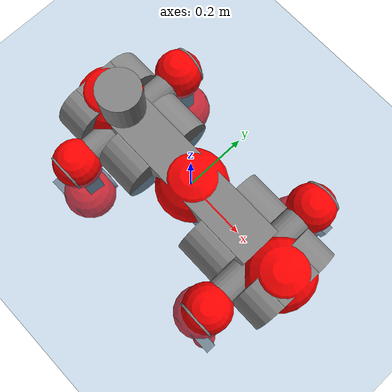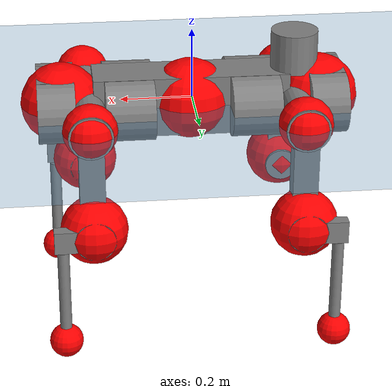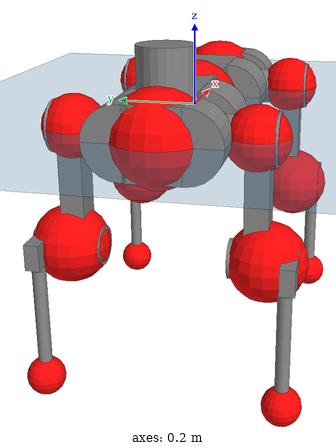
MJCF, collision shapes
<mujoco model="anymal_c">
  <compiler angle="radian" assetdir="assets" balanceinertia="true" inertiafromgeom="false"/>

  <option timestep="0.005" density="1.2" viscosity="2e-05"/>

  <size nkey="1"/>

  <visual>
    <quality shadowsize="8192"/>
    <map shadowclip="0.5"/>
  </visual>

  <default>
    <default class="/">
      <material specular="0" shininess="0.25"/>
      <geom contype="0" conaffinity="0" group="1" solref="-1000 -80"/>
      <site size="0.01 0.005 0.005" group="5"/>
      <general forcelimited="true" forcerange="-80 80" biastype="affine" gainprm="80" biasprm="0 -80 -2"/>
      <default class="anymal_c">
        <joint armature="0.01" damping="0.01" frictionloss="0.1"/>
        <default class="visual">
          <geom type="mesh" group="2"/>
          <default class="visual_zflip"/>
        </default>
        <default class="collision">
          <geom type="cylinder" group="3"/>
          <default class="foot">
            <geom size="0.03 0 0" type="sphere" condim="6" priority="1" friction="0.8 0.02 0.01" solimp="0.015 1 0.03"/>
          </default>
        </default>
      </default>
      <default class="reward_collision_sphere">
        <geom group="5" rgba="1 0 0 1"/>
      </default>
    </default>
  </default>

  <asset>
    <texture type="skybox" colorspace="auto" name="//unnamed_texture_0" builtin="gradient" rgb1="0.95 0.95 0.95" rgb2="0.95 0.95 0.95" width="100" height="600"/>
    <texture type="2d" colorspace="auto" name="texplane" builtin="checker" rgb1="0.345 0.575 0.748" rgb2="0.345 0.575 0.748" markrgb="1 1 1" width="512" height="512"/>
    <texture type="2d" colorspace="linear" name="base" file="base.png"/>
    <texture type="2d" colorspace="linear" name="top_shell" file="top_shell.png"/>
    <texture type="2d" colorspace="linear" name="bottom_shell" file="bottom_shell.png"/>
    <texture type="2d" colorspace="linear" name="remote" file="remote.png"/>
    <texture type="2d" colorspace="linear" name="hatch" file="hatch.png"/>
    <texture type="2d" colorspace="linear" name="handle" file="handle.png"/>
    <texture type="2d" colorspace="linear" name="face" file="face.png"/>
    <texture type="2d" colorspace="linear" name="battery" file="battery.png"/>
    <texture type="2d" colorspace="linear" name="lidar_cage" file="lidar_cage.png"/>
    <texture type="2d" colorspace="linear" name="depth_camera" file="depth_camera.png"/>
    <texture type="2d" colorspace="linear" name="wide_angle_camera" file="wide_angle_camera.png"/>
    <texture type="2d" colorspace="linear" name="lidar" file="lidar.png"/>
    <texture type="2d" colorspace="linear" name="drive" file="drive.png"/>
    <texture type="2d" colorspace="linear" name="hip_l" file="hip_l.png"/>
    <texture type="2d" colorspace="linear" name="shank_l" file="shank_l.png"/>
    <texture type="2d" colorspace="linear" name="foot" file="foot.png"/>
    <texture type="2d" colorspace="linear" name="thigh" file="thigh.png"/>
    <texture type="2d" colorspace="linear" name="shank_r" file="shank_r.png"/>
    <texture type="2d" colorspace="linear" name="hip_r" file="hip_r.png"/>
    <material name="MatPlane" class="/" texture="texplane" texuniform="true" texrepeat="2 2" specular="0.9" shininess="0.5"/>
    <material name="black_plastic" class="/" rgba="0.007 0.007 0.007 1"/>
    <material name="green" class="/" rgba="0.052 0.178 0.033 1"/>
    <material name="red" class="/" rgba="0.178 0.006 0.005 1"/>
    <material name="yellow" class="/" rgba="0.178 0.119 0.006 1"/>
    <material name="lwl" class="/" rgba="0.8 0.8 0.8 1"/>
    <material name="base" class="/" texture="base"/>
    <material name="top_shell" class="/" texture="top_shell"/>
    <material name="bottom_shell" class="/" texture="bottom_shell"/>
    <material name="hip_l" class="/" texture="hip_l"/>
    <material name="thigh" class="/" texture="thigh"/>
    <material name="shank_l" class="/" texture="shank_l"/>
    <material name="foot" class="/" texture="foot"/>
    <material name="hip_r" class="/" texture="hip_r"/>
    <material name="shank" class="/" texture="shank_r"/>
    <material name="hatch" class="/" texture="hatch"/>
    <material name="remote" class="/" texture="remote"/>
    <material name="handle" class="/" texture="handle"/>
    <material name="face" class="/" texture="face"/>
    <material name="depth_camera" class="/" texture="depth_camera"/>
    <material name="wide_angle_camera" class="/" texture="wide_angle_camera"/>
    <material name="battery" class="/" texture="battery"/>
    <material name="lidar_cage" class="/" texture="lidar_cage"/>
    <material name="lidar" class="/" texture="lidar"/>
    <material name="drive" class="/" texture="drive"/>
    <mesh name="base_0" class="/" file="base_0.obj"/>
    <mesh name="base_1" class="/" file="base_1.obj"/>
    <mesh name="base_2" class="/" file="base_2.obj"/>
    <mesh name="base_3" class="/" file="base_3.obj"/>
    <mesh name="base_4" class="/" file="base_4.obj"/>
    <mesh name="base_5" class="/" file="base_5.obj"/>
    <mesh name="top_shell" class="/" file="top_shell.obj"/>
    <mesh name="bottom_shell" class="/" file="bottom_shell.obj"/>
    <mesh name="remote" class="/" file="remote.obj"/>
    <mesh name="handle" class="/" file="handle.obj"/>
    <mesh name="face" class="/" file="face.obj"/>
    <mesh name="wide_angle_camera" class="/" file="wide_angle_camera.obj"/>
    <mesh name="depth_camera" class="/" file="depth_camera.obj"/>
    <mesh name="battery" class="/" file="battery.obj"/>
    <mesh name="lidar_cage" class="/" file="lidar_cage.obj"/>
    <mesh name="lidar" class="/" file="lidar.obj"/>
    <mesh name="drive" class="/" file="drive.obj"/>
    <mesh name="hip_l" class="/" file="hip_l.obj"/>
    <mesh name="thigh" class="/" file="thigh.obj"/>
    <mesh name="shank_l" class="/" file="shank_l.obj"/>
    <mesh name="foot" class="/" file="foot.obj"/>
    <mesh name="hip_r" class="/" file="hip_r.obj"/>
    <mesh name="hatch" class="/" file="hatch.obj"/>
    <mesh name="shank_r" class="/" file="shank_r.obj"/>
  </asset>

  <worldbody>
    <geom name="floor" class="/" size="100 100 0.125" type="plane" group="0" material="MatPlane"/>
    <light name="toplight_shadow" class="/" pos="0 0 5" dir="0.0990148 0.0990148 -0.990148" type="directional" ambient="0.04 0.04 0.04" diffuse="0.55 0.55 0.55" specular="0.12 0.12 0.12"/>
    <light name="toplight_fill" class="/" pos="0 0 5" dir="0.0990148 0.0990148 -0.990148" type="directional" castshadow="false" ambient="0.04 0.04 0.04" diffuse="0.3 0.3 0.3" specular="0.08 0.08 0.08"/>
    <body name="trunk" childclass="anymal_c" pos="0.00555156 0.00172278 -0.00130396" quat="0.999999 -0.00133373 -0.000788738 -0.000136139">
      <inertial pos="0.00820983 -0.00259331 0.0467247" quat="0.502524 0.494166 0.500918 0.502346" mass="15.968" diaginertia="0.199884 0.663395 0.208664"/>
      <joint name="//unnamed_joint_0" type="free" armature="0" damping="0" frictionloss="0"/>
      <geom name="//unnamed_geom_1" class="visual" material="green" mesh="base_0"/>
      <geom name="//unnamed_geom_2" class="visual" material="yellow" mesh="base_1"/>
      <geom name="//unnamed_geom_3" class="visual" material="red" mesh="base_2"/>
      <geom name="//unnamed_geom_4" class="visual" material="black_plastic" mesh="base_3"/>
      <geom name="//unnamed_geom_5" class="visual" material="lwl" mesh="base_4"/>
      <geom name="//unnamed_geom_6" class="visual" material="base" mesh="base_5"/>
      <geom name="trunk_1" class="collision" size="0.272205 0.0657047 0.0844774" type="box"/>
      <geom name="trunk_2" class="collision" size="0.0844774 0.0680512" pos="0.173808 0.0707877 0" quat="0.707107 0 0.707107 0"/>
      <geom name="trunk_3" class="collision" size="0.0844774 0.0680512" pos="-0.173808 0.0707877 0" quat="0.707107 0 0.707107 0"/>
      <geom name="trunk_4" class="collision" size="0.0844774 0.0680512" pos="0.173808 -0.0707877 0" quat="0.707107 0 0.707107 0"/>
      <geom name="trunk_5" class="collision" size="0.0844774 0.0680512" pos="-0.173808 -0.0707877 0" quat="0.707107 0 0.707107 0"/>
      <geom name="//unnamed_geom_12" class="visual" material="top_shell" mesh="top_shell"/>
      <geom name="//unnamed_geom_13" class="visual" material="bottom_shell" mesh="bottom_shell"/>
      <geom name="//unnamed_geom_14" class="visual" material="remote" mesh="remote"/>
      <geom name="//unnamed_geom_15" class="visual" material="handle" mesh="handle"/>
      <geom name="//unnamed_geom_16" class="visual" pos="0.331235 0 0" quat="1 0 0 0" material="face" mesh="face"/>
      <geom name="trunk_6" class="collision" size="0.0516251 0.0657047 0.0844774" pos="0.375186 0 0" type="box"/>
      <geom name="//unnamed_geom_18" class="collision" size="0.0844774 0.0516251" pos="0.375186 0.0707877 0" quat="0.707107 0 0.707107 0"/>
      <geom name="//unnamed_geom_19" class="collision" size="0.0844774 0.0516251" pos="0.375186 -0.0707877 0" quat="0.707107 0 0.707107 0"/>
      <geom name="//unnamed_geom_20" class="visual" pos="0.368922 0 -0.0309306" quat="0.965926 0 0.258819 0" material="depth_camera" mesh="depth_camera"/>
      <geom name="//unnamed_geom_21" class="visual" pos="0.409948 0 0.015053" material="wide_angle_camera" mesh="wide_angle_camera"/>
      <geom name="//unnamed_geom_22" class="visual_zflip" pos="-0.331235 0 0" quat="0 0 0 1" material="face" mesh="face"/>
      <geom name="trunk_7" class="collision" size="0.0516251 0.0657047 0.0844774" pos="-0.375186 0 0" quat="0 0 0 1" type="box"/>
      <geom name="//unnamed_geom_24" class="collision" size="0.0844774 0.0516251" pos="-0.375186 -0.0707877 0" quat="0 -0.707107 0 0.707107"/>
      <geom name="//unnamed_geom_25" class="collision" size="0.0844774 0.0516251" pos="-0.375186 0.0707877 0" quat="0 -0.707107 0 0.707107"/>
      <geom name="//unnamed_geom_26" class="visual" pos="-0.368922 0 -0.0309306" quat="0 -0.258819 0 0.965926" material="depth_camera" mesh="depth_camera"/>
      <geom name="//unnamed_geom_27" class="visual_zflip" pos="-0.409948 0 0.015053" quat="0 0 0 1" material="wide_angle_camera" mesh="wide_angle_camera"/>
      <geom name="//unnamed_geom_28" class="visual" material="battery" mesh="battery"/>
      <geom name="//unnamed_geom_29" class="visual" pos="0 0.0801126 0.0276422" quat="0.683013 -0.183013 0.183013 0.683013" material="depth_camera" mesh="depth_camera"/>
      <geom name="//unnamed_geom_30" class="visual" pos="0 -0.0801126 0.0276422" quat="0.683013 0.183013 0.183013 -0.683013" material="depth_camera" mesh="depth_camera"/>
      <geom name="//unnamed_geom_31" class="visual" pos="-0.290879 0 0.0739073" quat="1 0 0 0" material="lidar_cage" mesh="lidar_cage"/>
      <geom name="trunk_8" class="collision" size="0.0657047 0.0563183" pos="-0.290879 0 0.13424"/>
      <geom name="//unnamed_geom_33" class="visual" pos="-0.290879 8.33417e-05 0.142988" quat="0.707107 0 0 -0.707107" material="lidar" mesh="lidar"/>
      <geom name="//unnamed_geom_34" class="visual" pos="0.239656 0.105168 9.85166e-11" quat="0.258819 0.965926 0 0" material="drive" mesh="drive"/>
      <geom name="//unnamed_geom_35" class="visual" pos="0.239656 -0.105168 -9.85166e-11" quat="0.258819 -0.965926 0 0" material="drive" mesh="drive"/>
      <geom name="//unnamed_geom_36" class="visual" pos="-0.239656 0.105168 -9.85166e-11" quat="0 0 0.965926 -0.258819" material="drive" mesh="drive"/>
      <geom name="//unnamed_geom_37" class="visual" pos="-0.239656 -0.105168 9.85166e-11" quat="0 0 -0.965926 -0.258819" material="drive" mesh="drive"/>
      <geom name="//unnamed_geom_38" class="visual" pos="0.0926978 0 0.0734046" quat="1 0 0 0" material="hatch" mesh="hatch"/>
      <geom name="//unnamed_geom_39" class="reward_collision_sphere" size="0.112637"/>
      <geom name="//unnamed_geom_40" class="reward_collision_sphere" size="0.112637" pos="0.359604 0 0"/>
      <geom name="//unnamed_geom_41" class="reward_collision_sphere" size="0.112637" pos="-0.359604 0 0"/>
      <site name="imu" pos="0.201914 0.0160558 0.0359999" size="0.00938638"/>
      <camera name="track" pos="0 -2.02251 0" quat="0.707107 0.707107 0 0" mode="trackcom"/>
      <camera name="ego_camera" pos="0.359604 0 -0.0402217" quat="-0.5 -0.5 0.5 0.5"/>
      <body name="LF_HIP" pos="0.24055 0.106162 0.00151235" quat="0.259984 0.965609 0.00155717 -0.00202686">
        <inertial pos="0.0517139 -0.0154371 -0.00824796" quat="-0.127843 0.708084 -0.129724 0.682235" mass="2.12352" diaginertia="0.00176021 0.00524729 0.00320988"/>
        <joint name="LF_HAA" pos="0 0 0" axis="0.999878 -0.0131414 0.00838783" range="-0.748671 0.567361" armature="0.00820151" damping="0.0121642" frictionloss="0.0987619"/>
        <geom name="//unnamed_geom_42" class="visual" pos="0 5.79528e-06 -9.51871e-07" quat="0.258819 -0.965926 0 0" material="hip_l" mesh="hip_l"/>
        <geom name="//unnamed_geom_43" class="visual" pos="0.0478672 -0.0607924 -0.0350562" quat="0.183013 -0.683013 0.683013 0.183013" material="drive" mesh="drive"/>
        <geom name="//unnamed_geom_44" class="collision" size="0.0469319 0.0657047" pos="0.0478672 -0.0120944 -0.00694327" quat="-0.353553 -0.612372 0.612372 -0.353553"/>
        <body name="LF_THIGH" pos="0.0489552 -0.0705205 -0.0422633" quat="0.182924 -0.682762 0.683189 0.183379">
          <inertial pos="0.0191446 0.00111037 -0.251418" quat="0.993799 -0.00677547 -0.0804109 0.0764963" mass="2.45106" diaginertia="0.00955615 0.0322199 0.00419775"/>
          <joint name="LF_HFE" pos="0 0 0" axis="0.999998 -0.000374145 0.00217731" range="-3.07733 3.08885" armature="0.00815887" damping="0.0341869" frictionloss="0.0956719"/>
          <geom name="//unnamed_geom_45" class="visual" pos="-0.00422063 -6.65073e-06 0" quat="0.707107 0 0 -0.707107" material="thigh" mesh="thigh"/>
          <geom name="//unnamed_geom_46" class="collision" size="0.0610115 0.0375455" pos="0.0319648 0 0" quat="0.5 0.5 -0.5 -0.5"/>
          <geom name="//unnamed_geom_47" class="collision" size="0.0351989 0.0281591 0.132643" pos="0.0239736 0 -0.142097" quat="0.707107 0 0 -0.707107" type="box"/>
          <geom name="//unnamed_geom_48" class="visual" pos="0.0801516 0 -0.286579" quat="1 0 0 0" material="drive" mesh="drive"/>
          <geom name="//unnamed_geom_49" class="collision" size="0.0469319 0.0657047" pos="0.0242133 0 -0.286579" quat="0.707107 0 0.707107 0"/>
          <geom name="//unnamed_geom_50" class="reward_collision_sphere" size="0.075091" pos="0.019978 0 0"/>
          <body name="LF_SHANK" pos="0.0796405 0.00186844 -0.285632" quat="1 -0.000531409 -0.000139229 0.000215283">
            <inertial pos="0.00383473 -0.0618346 -0.0788015" quat="0.991896 -0.126683 0.0044451 -0.00864907" mass="0.501089" diaginertia="0.00325066 0.00984168 0.00117398"/>
            <joint name="LF_KFE" pos="0 0 0" axis="0.999919 0.0126229 -0.00185689" range="-3.17586 3.21048" armature="0.0094423" damping="0.0105162" frictionloss="0.0832617"/>
            <geom name="//unnamed_geom_51" class="visual" pos="-0.00137626 -0.00733827 0" quat="0.707107 0 0 -0.707107" material="shank_l" mesh="shank_l"/>
            <geom name="LF_kfe_act" class="collision" size="0.0563183 0.0187728" pos="0.0159824 0 0" quat="0.5 0.5 -0.5 -0.5"/>
            <geom name="//unnamed_geom_53" class="collision" size="0.0539707 0.031679 0.0178341" pos="0.0159824 -0.058146 0" quat="0.5 0.5 -0.5 -0.5" type="box"/>
            <geom name="//unnamed_geom_54" class="visual" pos="0.0104288 -0.0913045 -0.339843" quat="0.382683 0 0 -0.92388" material="foot" mesh="foot"/>
            <geom name="LF_calf" class="collision" size="0.0164262 0.132584" pos="0.0104285 -0.0889397 -0.169921" quat="0.707107 0 0 -0.707107"/>
            <geom name="LF_foot" class="foot" size="0.0322254" pos="0.0104285 -0.0889397 -0.317218" quat="0.707107 0 0 -0.707107"/>
            <geom name="//unnamed_geom_57" class="reward_collision_sphere" size="0.0938638" pos="-0.0399559 0 0"/>
            <geom name="//unnamed_geom_58" class="reward_collision_sphere" size="0.0469319" pos="0.0104285 -0.0889397 -0.317218"/>
            <site name="LF_foot" class="foot" pos="0.0104285 -0.0889397 -0.317218" quat="0.707107 0 0 -0.707107" size="0.00938638"/>
          </body>
        </body>
      </body>
      <body name="RF_HIP" pos="0.239659 -0.109049 -0.00107199" quat="0.2587 -0.965958 0.000163706 -0.000212366">
        <inertial pos="0.0425021 0.0179663 -0.00838001" quat="0.129934 0.679127 0.129868 0.71066" mass="2.04085" diaginertia="0.00181576 0.00494765 0.00335282"/>
        <joint name="RF_HAA" pos="0 0 0" axis="0.999999 0.00103488 -0.000738443" range="-0.497055 0.726557" armature="0.0121043" damping="0.0100069" frictionloss="0.0669198"/>
        <geom name="//unnamed_geom_59" class="visual" pos="0 -5.79524e-06 -9.51868e-07" quat="0.258819 0.965926 0 0" material="hip_r" mesh="hip_r"/>
        <geom name="//unnamed_geom_60" class="visual" pos="0.0478672 0.0607924 -0.0350562" quat="0.183013 0.683013 0.683013 -0.183013" material="drive" mesh="drive"/>
        <geom name="//unnamed_geom_61" class="collision" size="0.0469319 0.0657047" pos="0.0478672 0.0120944 -0.00694327" quat="-0.353553 0.612372 0.612372 0.353553"/>
        <body name="RF_THIGH" pos="0.0509299 0.0719024 -0.04641" quat="0.184255 0.681541 0.683718 -0.18461">
          <inertial pos="0.0266251 0.00624251 -0.249101" quat="0.993813 -0.00449587 -0.0793564 0.0775708" mass="2.69488" diaginertia="0.00962097 0.0306513 0.00437825"/>
          <joint name="RF_HFE" pos="0 0 0" axis="0.999878 -0.00345551 -0.0152306" stiffness="0.0089841" range="-3.18218 3.11226" armature="0.00916502" damping="0.00967375" frictionloss="0.0985791"/>
          <geom name="//unnamed_geom_62" class="visual" pos="-0.00422063 -6.65073e-06 0" quat="0.707107 0 0 -0.707107" material="thigh" mesh="thigh"/>
          <geom name="//unnamed_geom_63" class="collision" size="0.0610115 0.0375455" pos="0.0319648 0 0" quat="0.5 0.5 0.5 0.5"/>
          <geom name="//unnamed_geom_64" class="collision" size="0.0351989 0.0281591 0.132643" pos="0.0239736 0 -0.142097" quat="0.707107 0 0 0.707107" type="box"/>
          <geom name="//unnamed_geom_65" class="visual" pos="0.0801516 0 -0.286579" quat="1 0 0 0" material="drive" mesh="drive"/>
          <geom name="//unnamed_geom_66" class="collision" size="0.0469319 0.0657047" pos="0.0242133 0 -0.286579" quat="0.707107 0 0.707107 0"/>
          <geom name="//unnamed_geom_67" class="reward_collision_sphere" size="0.075091" pos="0.019978 0 0"/>
          <body name="RF_SHANK" pos="0.0788023 0.000127819 -0.286851" quat="1 -0.000477039 -0.000223748 9.30216e-05">
            <inertial pos="0.0045644 0.0625546 -0.0830124" quat="0.993315 0.113717 -0.00898714 0.0177005" mass="0.479027" diaginertia="0.00302831 0.00960034 0.00111835"/>
            <joint name="RF_KFE" pos="0 0 0" axis="0.999878 -0.015346 0.00275098" stiffness="0.000852417" range="-3.13521 3.09609" armature="0.0101468" damping="0.0058519" frictionloss="0.104249"/>
            <geom name="//unnamed_geom_68" class="visual" pos="-0.00137625 0.00733825 0" quat="0.707107 0 0 0.707107" material="shank" mesh="shank_r"/>
            <geom name="RF_kfe_act" class="collision" size="0.0563183 0.0187728" pos="0.0159824 0 0" quat="0.5 0.5 0.5 0.5"/>
            <geom name="//unnamed_geom_70" class="collision" size="0.0539707 0.031679 0.0178341" pos="0.0159824 0.058146 0" quat="0.5 0.5 0.5 0.5" type="box"/>
            <geom name="//unnamed_geom_71" class="visual" pos="0.0104282 0.0913045 -0.339843" quat="0.382683 0 0 0.92388" material="foot" mesh="foot"/>
            <geom name="RF_calf" class="collision" size="0.0164262 0.132584" pos="0.0104285 0.0889397 -0.169921" quat="0.707107 0 0 0.707107"/>
            <geom name="RF_foot" class="foot" size="0.0319349" pos="0.0104285 0.0889397 -0.317218" quat="0.707107 0 0 0.707107"/>
            <geom name="//unnamed_geom_74" class="reward_collision_sphere" size="0.0938638" pos="-0.0399559 0 0"/>
            <geom name="//unnamed_geom_75" class="reward_collision_sphere" size="0.0469319" pos="0.0104285 0.0889397 -0.317218"/>
            <site name="RF_foot" class="foot" pos="0.0104285 0.0889397 -0.317218" quat="0.707107 0 0 0.707107" size="0.00938638"/>
          </body>
        </body>
      </body>
      <body name="LH_HIP" pos="-0.240756 0.108388 -0.000327007" quat="0.000552299 0.00284122 0.965369 -0.260871">
        <inertial pos="0.0397576 0.0128385 -0.00650358" quat="0.134317 0.679438 0.127422 0.70999" mass="2.40085" diaginertia="0.00194477 0.00514037 0.0033394"/>
        <joint name="LH_HAA" pos="0 0 0" axis="0.999956 0.00619744 -0.0070856" range="-0.542008 0.769912" armature="0.0095258" damping="0.00743503" frictionloss="0.100298"/>
        <geom name="//unnamed_geom_76" class="visual" pos="0 -5.79524e-06 -9.51868e-07" quat="-0.258819 -0.965926 0 0" material="hip_r" mesh="hip_r"/>
        <geom name="//unnamed_geom_77" class="visual" pos="0.0478672 0.0607924 -0.0350562" quat="0.183013 0.683013 0.683013 -0.183013" material="drive" mesh="drive"/>
        <geom name="//unnamed_geom_78" class="collision" size="0.0469319 0.0657047" pos="0.0478672 0.0120944 -0.00694327" quat="-0.353553 0.612372 0.612372 0.353553"/>
        <body name="LH_THIGH" pos="0.052715 0.0743985 -0.0445528" quat="0.185335 0.683264 0.682006 -0.183493">
          <inertial pos="0.0244978 -0.00239273 -0.249185" quat="0.992608 -0.00823264 -0.065589 0.101783" mass="2.64794" diaginertia="0.0101005 0.0326681 0.0043913"/>
          <joint name="LH_HFE" pos="0 0 0" axis="0.999965 -0.00141445 0.00821995" range="-3.18992 3.14092" armature="0.00995064" damping="0.033859" frictionloss="0.0862818"/>
          <geom name="//unnamed_geom_79" class="visual" pos="-0.00422063 -6.65073e-06 0" quat="0.707107 0 0 -0.707107" material="thigh" mesh="thigh"/>
          <geom name="//unnamed_geom_80" class="collision" size="0.0610115 0.0375455" pos="0.0319648 0 0" quat="0.5 0.5 -0.5 -0.5"/>
          <geom name="//unnamed_geom_81" class="collision" size="0.0351989 0.0281591 0.132643" pos="0.0239736 0 -0.142097" quat="0.707107 0 0 -0.707107" type="box"/>
          <geom name="//unnamed_geom_82" class="visual" pos="0.0801516 0 -0.286579" quat="1 0 0 0" material="drive" mesh="drive"/>
          <geom name="//unnamed_geom_83" class="collision" size="0.0469319 0.0657047" pos="0.0242133 0 -0.286579" quat="0.707107 0 0.707107 0"/>
          <geom name="//unnamed_geom_84" class="reward_collision_sphere" size="0.075091" pos="0.019978 0 0"/>
          <body name="LH_SHANK" pos="0.0823236 0.000753389 -0.286364" quat="1 -0.000307952 0.000144813 -4.68845e-05">
            <inertial pos="0.00424107 0.0623777 -0.0814504" quat="0.992631 0.118563 -0.00286426 0.0248574" mass="0.482492" diaginertia="0.00332065 0.00981571 0.00112433"/>
            <joint name="LH_KFE" pos="0 0 0" axis="0.999987 0.000945219 0.00498226" range="-3.18844 3.13786" armature="0.00917221" damping="0.0296675" frictionloss="0.0913747"/>
            <geom name="//unnamed_geom_85" class="visual" pos="-0.00137625 0.00733825 0" quat="-0.707107 0 0 -0.707107" material="shank" mesh="shank_r"/>
            <geom name="LH_kfe_act" class="collision" size="0.0563183 0.0187728" pos="0.0159824 0 0" quat="0.5 0.5 -0.5 -0.5"/>
            <geom name="//unnamed_geom_87" class="collision" size="0.0539707 0.031679 0.0178341" pos="0.0159824 0.058146 0" quat="0.5 0.5 -0.5 -0.5" type="box"/>
            <geom name="//unnamed_geom_88" class="visual" pos="0.0104282 0.0913045 -0.339843" quat="-0.382683 0 0 -0.92388" material="foot" mesh="foot"/>
            <geom name="LH_calf" class="collision" size="0.0164262 0.132584" pos="0.0104285 0.0889397 -0.169921" quat="0.707107 0 0 -0.707107"/>
            <geom name="LH_foot" class="foot" size="0.0267468" pos="0.0104285 0.0889397 -0.317218" quat="0.707107 0 0 -0.707107"/>
            <geom name="//unnamed_geom_91" class="reward_collision_sphere" size="0.0938638" pos="-0.0399559 0 0"/>
            <geom name="//unnamed_geom_92" class="reward_collision_sphere" size="0.0469319" pos="0.0104285 0.0889397 -0.317218"/>
            <site name="LH_foot" class="foot" pos="0.0104285 0.0889397 -0.317218" quat="0.707107 0 0 -0.707107" size="0.00938638"/>
          </body>
        </body>
      </body>
      <body name="RH_HIP" pos="-0.240625 -0.0998084 -0.0033448" quat="-1.37174e-05 0.000589839 -0.966063 -0.258304">
        <inertial pos="0.0450927 -0.0183634 -0.00820317" quat="-0.14454 0.707777 -0.119619 0.681067" mass="2.29949" diaginertia="0.00189221 0.00512174 0.00331944"/>
        <joint name="RH_HAA" pos="0 0 0" axis="0.999959 0.00408332 0.00810897" range="-0.677839 0.487492" armature="0.00662045" damping="0" frictionloss="0.112371"/>
        <geom name="//unnamed_geom_93" class="visual" pos="0 5.79528e-06 -9.51871e-07" quat="-0.258819 0.965926 0 0" material="hip_l" mesh="hip_l"/>
        <geom name="//unnamed_geom_94" class="visual" pos="0.0478672 -0.0607924 -0.0350562" quat="-0.183013 0.683013 -0.683013 -0.183013" material="drive" mesh="drive"/>
        <geom name="//unnamed_geom_95" class="collision" size="0.0469319 0.0657047" pos="0.0478672 -0.0120944 -0.00694327" quat="0.353553 0.612372 -0.612372 0.353553"/>
        <body name="RH_THIGH" pos="0.0496894 -0.0758248 -0.0383967" quat="-0.182806 0.683051 -0.682893 -0.18352">
          <inertial pos="0.0248671 -0.000467326 -0.245399" quat="0.993359 -0.004508 -0.0815343 0.0810567" mass="2.4774" diaginertia="0.00954578 0.0312545 0.00446505"/>
          <joint name="RH_HFE" pos="0 0 0" axis="0.999929 0.0108632 0.00495734" stiffness="0.00792119" range="-3.04757 3.12666" armature="0.00931098" damping="0" frictionloss="0.0838219"/>
          <geom name="//unnamed_geom_96" class="visual" pos="-0.00422063 -6.65073e-06 0" quat="0.707107 0 0 -0.707107" material="thigh" mesh="thigh"/>
          <geom name="//unnamed_geom_97" class="collision" size="0.0610115 0.0375455" pos="0.0319648 0 0" quat="0.5 0.5 0.5 0.5"/>
          <geom name="//unnamed_geom_98" class="collision" size="0.0351989 0.0281591 0.132643" pos="0.0239736 0 -0.142097" quat="0.707107 0 0 0.707107" type="box"/>
          <geom name="//unnamed_geom_99" class="visual" pos="0.0801516 0 -0.286579" quat="1 0 0 0" material="drive" mesh="drive"/>
          <geom name="//unnamed_geom_100" class="collision" size="0.0469319 0.0657047" pos="0.0242133 0 -0.286579" quat="0.707107 0 0.707107 0"/>
          <geom name="//unnamed_geom_101" class="reward_collision_sphere" size="0.075091" pos="0.019978 0 0"/>
          <body name="RH_SHANK" pos="0.0875163 -0.00226382 -0.286339" quat="0.999999 -0.00046067 -0.000996151 8.15822e-05">
            <inertial pos="-0.00242608 -0.061628 -0.0813064" quat="0.993151 -0.115285 -0.000609642 -0.018959" mass="0.480654" diaginertia="0.00355048 0.0107561 0.00121472"/>
            <joint name="RH_KFE" pos="0 0 0" axis="0.999824 -0.00691108 0.0174158" range="-3.17924 2.99793" armature="0.0107731" damping="0.0179651" frictionloss="0.103634"/>
            <geom name="//unnamed_geom_102" class="visual" pos="-0.00137626 -0.00733827 0" quat="0.707107 0 0 -0.707107" material="shank_l" mesh="shank_l"/>
            <geom name="RH_kfe_act" class="collision" size="0.0563183 0.0187728" pos="0.0159824 0 0" quat="0.5 0.5 0.5 0.5"/>
            <geom name="//unnamed_geom_104" class="collision" size="0.0539707 0.031679 0.0178341" pos="0.0159824 -0.058146 0" quat="0.5 0.5 0.5 0.5" type="box"/>
            <geom name="//unnamed_geom_105" class="visual" pos="0.0104288 -0.0913045 -0.339843" quat="0.382683 0 0 -0.92388" material="foot" mesh="foot"/>
            <geom name="RH_calf" class="collision" size="0.0164262 0.132584" pos="0.0104285 -0.0889397 -0.169921" quat="0.707107 0 0 0.707107"/>
            <geom name="RH_foot" class="foot" size="0.0263562" pos="0.0104285 -0.0889397 -0.317218" quat="0.707107 0 0 0.707107"/>
            <geom name="//unnamed_geom_108" class="reward_collision_sphere" size="0.0938638" pos="-0.0399559 0 0"/>
            <geom name="//unnamed_geom_109" class="reward_collision_sphere" size="0.0469319" pos="0.0104285 -0.0889397 -0.317218"/>
            <site name="RH_foot" class="foot" pos="0.0104285 -0.0889397 -0.317218" quat="0.707107 0 0 0.707107" size="0.00938638"/>
          </body>
        </body>
      </body>
    </body>
  </worldbody>

  <contact>
    <pair class="/" geom1="floor" geom2="LF_foot" name="//unnamed_contact_0"/>
    <pair class="/" geom1="floor" geom2="RF_foot" name="//unnamed_contact_1"/>
    <pair class="/" geom1="floor" geom2="LH_foot" name="//unnamed_contact_2"/>
    <pair class="/" geom1="floor" geom2="RH_foot" name="//unnamed_contact_3"/>
  </contact>

  <actuator>
    <general name="LF_HAA" class="/" joint="LF_HAA" forcerange="-74.7683 74.7683" gainprm="76.9448" biasprm="0 -76.9448 -2.15891"/>
    <general name="LF_HFE" class="/" joint="LF_HFE" forcerange="-74.7242 74.7242" gainprm="76.9448" biasprm="0 -76.9448 -2.15891"/>
    <general name="LF_KFE" class="/" joint="LF_KFE" forcerange="-73.135 73.135" gainprm="76.9448" biasprm="0 -76.9448 -2.15891"/>
    <general name="RF_HAA" class="/" joint="RF_HAA" forcerange="-56.7747 56.7747" gainprm="76.9448" biasprm="0 -76.9448 -2.15891"/>
    <general name="RF_HFE" class="/" joint="RF_HFE" forcerange="-76.2123 76.2123" gainprm="76.9448" biasprm="0 -76.9448 -2.15891"/>
    <general name="RF_KFE" class="/" joint="RF_KFE" forcerange="-81.573 81.573" gainprm="76.9448" biasprm="0 -76.9448 -2.15891"/>
    <general name="LH_HAA" class="/" joint="LH_HAA" forcerange="-71.318 71.318" gainprm="76.9448" biasprm="0 -76.9448 -2.15891"/>
    <general name="LH_HFE" class="/" joint="LH_HFE" forcerange="-71.0806 71.0806" gainprm="76.9448" biasprm="0 -76.9448 -2.15891"/>
    <general name="LH_KFE" class="/" joint="LH_KFE" forcerange="-81.1785 81.1785" gainprm="76.9448" biasprm="0 -76.9448 -2.15891"/>
    <general name="RH_HAA" class="/" joint="RH_HAA" forcerange="-82.6295 82.6295" gainprm="76.9448" biasprm="0 -76.9448 -2.15891"/>
    <general name="RH_HFE" class="/" joint="RH_HFE" forcerange="-70.4935 70.4935" gainprm="76.9448" biasprm="0 -76.9448 -2.15891"/>
    <general name="RH_KFE" class="/" joint="RH_KFE" forcerange="-62.1153 62.1153" gainprm="76.9448" biasprm="0 -76.9448 -2.15891"/>
  </actuator>

  <sensor>
    <gyro site="imu" name="imu_angular_velocity"/>
    <velocimeter site="imu" name="imu_linear_velocity"/>
    <framelinvel objtype="site" objname="LF_foot" name="LF_foot_global_linear_velocity"/>
    <framelinvel objtype="site" objname="RF_foot" name="RF_foot_global_linear_velocity"/>
    <framelinvel objtype="site" objname="LH_foot" name="LH_foot_global_linear_velocity"/>
    <framelinvel objtype="site" objname="RH_foot" name="RH_foot_global_linear_velocity"/>
  </sensor>

  <keyframe>
    <key name="home" qpos="0 0 0.55 1 0 0 0 0 0.4 -0.8 0 -0.4 0.8 0 -0.4 0.8 0 0.4 -0.8"/>
  </keyframe>
</mujoco>
